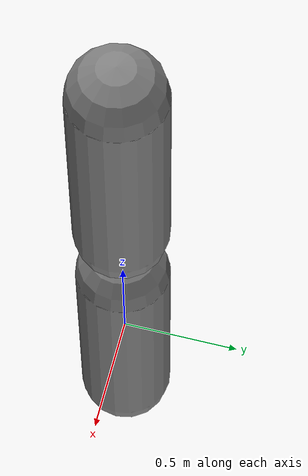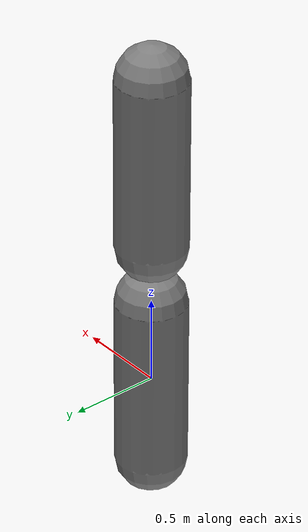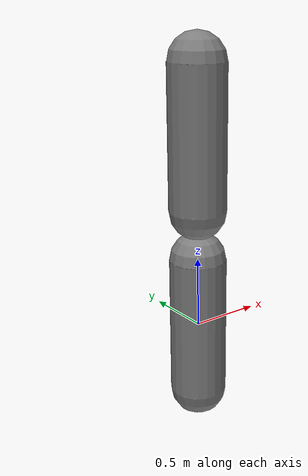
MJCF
<mujoco model="capsule_capsule_ends">
            <option gravity="0 0 0" timestep="0.001"/>
            <worldbody>
                <body name="cap1" pos="0 0 0">
                    <joint type="free"/>
                    <geom type="capsule" size="0.2 0.5"/>
                </body>
                <body name="cap2" pos="0 0 1.35">
                    <joint type="free"/>
                    <geom type="capsule" size="0.2 0.5"/>
                </body>
            </worldbody>
        </mujoco>
